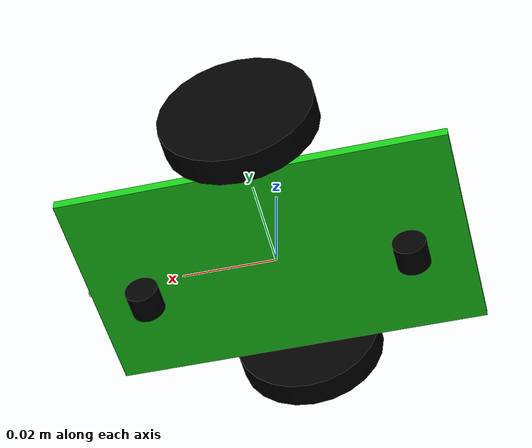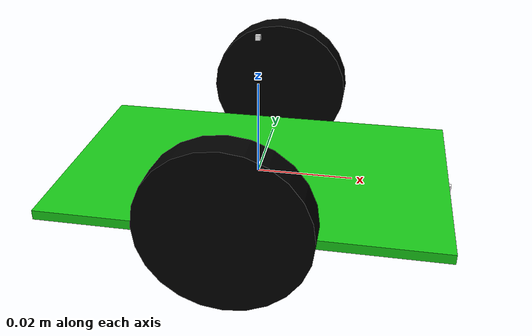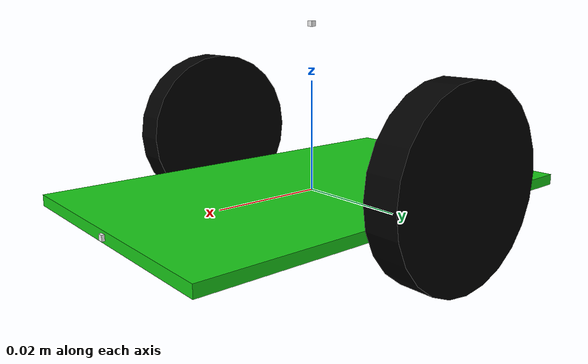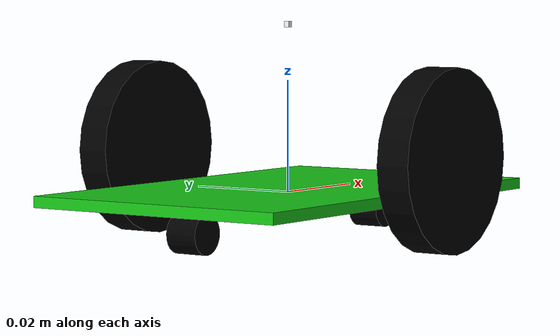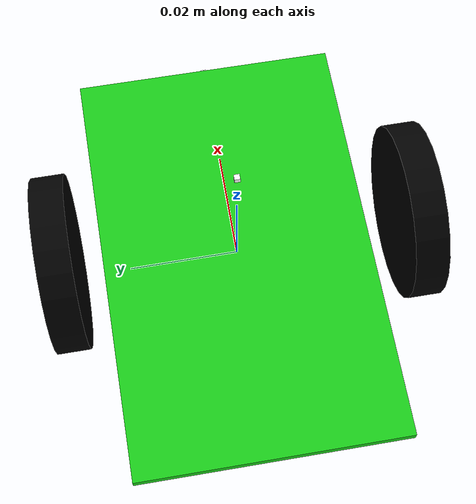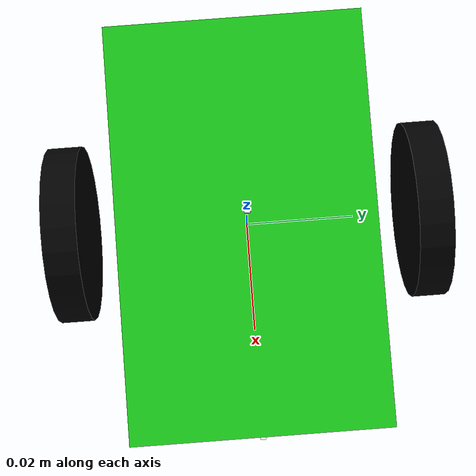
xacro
<?xml version="1.0" ?>

<robot name="basic_amr" xmlns:xacro="http://ros.org/wiki/xacro">

  <!-- Begin - Include -->

  <xacro:include filename="$(find basic_amr_description)/urdf/basic_amr_gazebo.xacro" />

  <!-- End - Include -->

  <material name="white">
    <color rgba="1 1 1 1"/>
  </material>

  <material name="black">
    <color rgba="0 0 0 1"/>
  </material>

  <material name="green">
    <color rgba="0.1 0.8 0.1 1"/>
  </material>

  <!-- Begin - Robot description -->

  <link name="base_link" />

  <joint name="base__base_link" type="fixed">
    <parent link="base_link"/>
    <child link="base"/>
  </joint>

  <link name="base">
    <origin rpy="0 0 0" xyz="0.00 0 0.00"/>
    <visual>
      <geometry>
        <box size="0.08 0.05 0.002"/>
      </geometry>
      <material name="green"/>
    </visual>
    <collision>
      <geometry>
        <box size="0.08 0.05 0.002"/>
      </geometry>
    </collision>
    <inertial>
      <mass value="0.5" />
      <inertia ixx="1.0" ixy="0.0" ixz="0.0" iyy="1.0" iyz="0.0" izz="1.0" />
    </inertial>
  </link>

  <link name="fcastor_wheel">
    <origin rpy="0 0 0" xyz="0.00 0 0.00"/>
    <visual>
      <geometry>
        <cylinder length="0.006" radius="0.0035"/>
      </geometry>
      <material name="black"/>
    </visual>
    <collision>
      <geometry>
        <cylinder length="0.006" radius="0.0035"/>
      </geometry>
    </collision>
    <inertial>
      <mass value="0.05" />
      <inertia ixx="0.001" ixy="0.0" ixz="0.0" iyy="0.001" iyz="0.0" izz="0.001" />
    </inertial>
  </link>

  <joint name="base__fcastor_wheel" type="continuous">
    <parent link="base"/>
    <child link="fcastor_wheel"/>
    <origin xyz="0.028 0 -0.005" rpy="1.5708 0 0"/>
    <axis xyz="0 0 1"/>
  </joint>

  <link name="bcastor_wheel">
    <origin rpy="0 0 0" xyz="0.00 0 0.00"/>
    <visual>
      <geometry>
        <cylinder length="0.006" radius="0.0035"/>
      </geometry>
      <material name="black"/>
    </visual>
    <collision>
      <geometry>
        <cylinder length="0.006" radius="0.0035"/>
      </geometry>
    </collision>
    <inertial>
      <mass value="0.05" />
      <inertia ixx="0.001" ixy="0.0" ixz="0.0" iyy="0.001" iyz="0.0" izz="0.001" />
    </inertial>
  </link>

  <joint name="base__bcastor_wheel" type="continuous">
    <parent link="base"/>
    <child link="bcastor_wheel"/>
    <origin xyz="-0.028 0 -0.005" rpy="1.5708 0 0"/>
    <axis xyz="0 0 1"/>
  </joint>

  <link name="left_wheel">
    <origin rpy="0 0 0" xyz="0.00 0 0.00"/>
    <visual>
      <geometry>
        <cylinder length="0.006" radius="0.016"/>
      </geometry>
      <material name="black"/>
    </visual>
    <collision>
      <geometry>
        <cylinder length="0.006" radius="0.016"/>
      </geometry>
    </collision>
    <inertial>
      <mass value="0.05" />
      <inertia ixx="0.001" ixy="0.0" ixz="0.0" iyy="0.001" iyz="0.0" izz="0.001" />
    </inertial>
  </link>

  <joint name="wheel_left_joint" type="continuous">
    <parent link="base"/>
    <child link="left_wheel"/>
    <origin xyz="0 0.032 0.007" rpy="1.5708 0 0"/>
    <axis xyz="0 0 -1"/>
  </joint>

  <link name="right_wheel">
    <origin rpy="0 0 0" xyz="0.00 0 0.00"/>
    <visual>
      <geometry>
        <cylinder length="0.006" radius="0.016"/>
      </geometry>
      <material name="black"/>
    </visual>
    <collision>
      <geometry>
        <cylinder length="0.006" radius="0.016"/>
      </geometry>
    </collision>
    <inertial>
      <mass value="0.05" />
      <inertia ixx="0.001" ixy="0.0" ixz="0.0" iyy="0.001" iyz="0.0" izz="0.001" />
    </inertial>
  </link>

  <joint name="wheel_right_joint" type="continuous">
    <parent link="base"/>
    <child link="right_wheel"/>
    <origin xyz="0 -0.032 0.007" rpy="1.5708 0 0"/>
    <axis xyz="0 0 -1"/>
  </joint>

  <!-- End - Robot description -->

  <!-- Begin - Sensor description -->

  <!-- RGB Camera representation -->

  <link name="front_camera_link">
    <visual>
      <origin rpy="0.0 0 0" xyz="0 0 0"/>
      <geometry>
        <box size="0.001 0.001 0.001"/>
      </geometry>
      <material name="white"/>
    </visual>
  </link>

  <joint name="base__front_camera_joint" type="fixed">
    <parent link="base"/>
    <child link="front_camera_link"/>
    <origin xyz="0.040 0 0" rpy="0 0 0"/>
  </joint>

  <!-- 2D Lidar representation -->

  <link name="rplidar_link">
    <visual>
      <origin rpy="0.0 0 0" xyz="0 0 0"/>
      <geometry>
        <box size="0.001 0.001 0.001"/>
      </geometry>
      <material name="white"/>
    </visual>
  </link>

  <joint name="base__rplidar_link_joint" type="fixed">
    <parent link="base"/>
    <child link="rplidar_link"/>
    <origin xyz="0 0 0.03" rpy="0 0 0"/>
  </joint>

  <!-- End - Sensor description -->

</robot>
